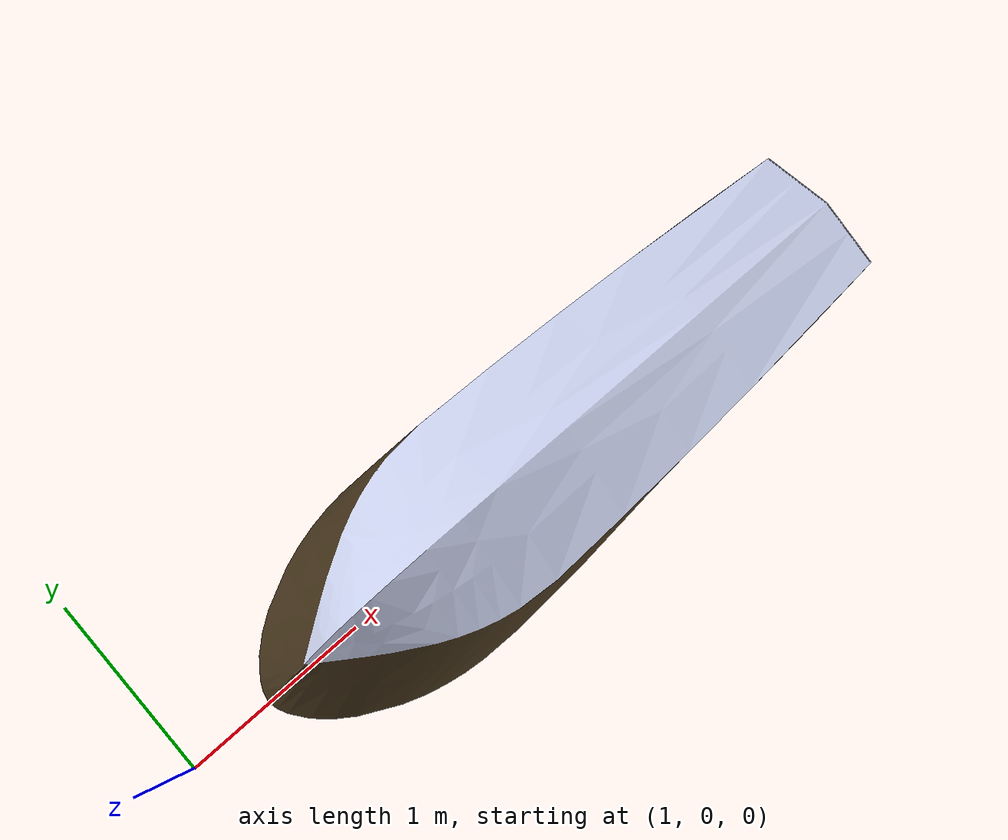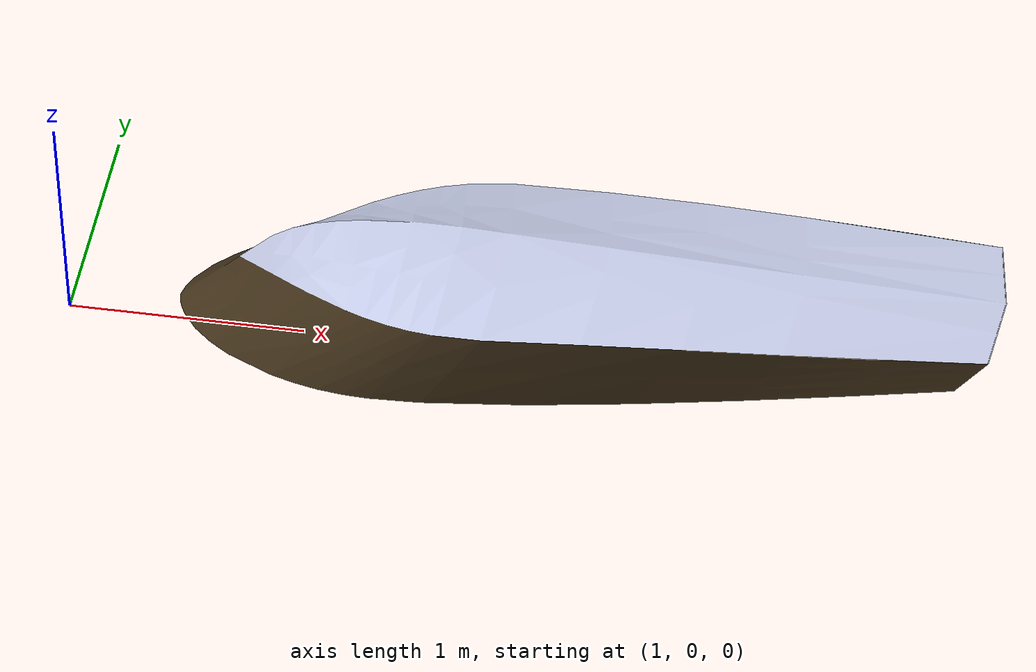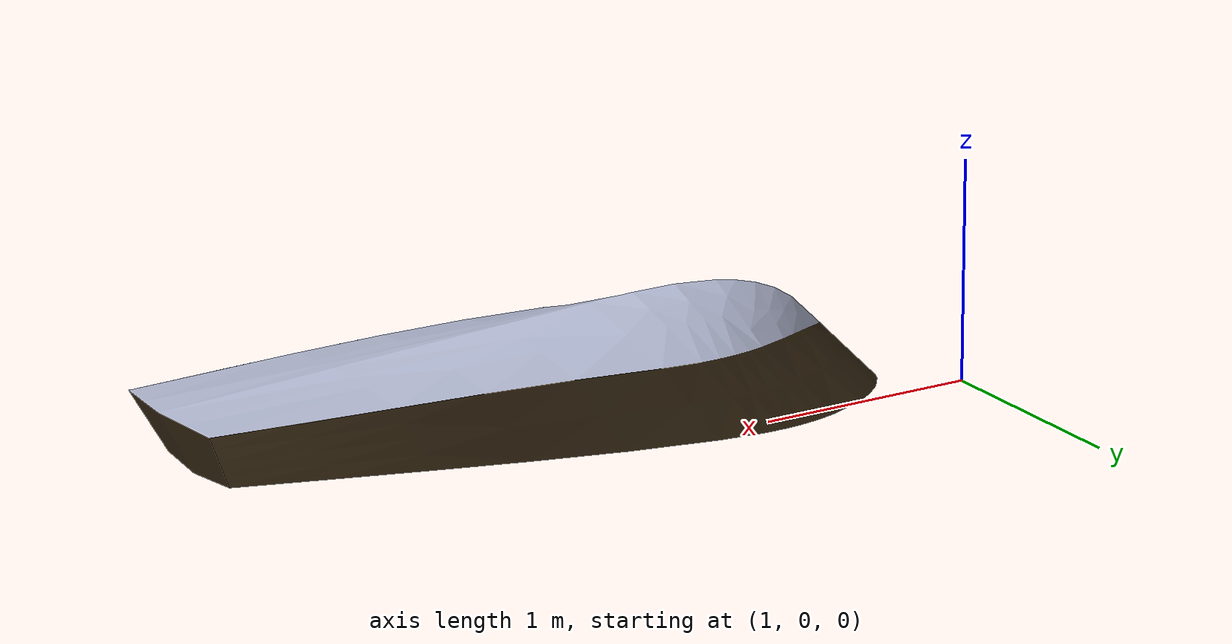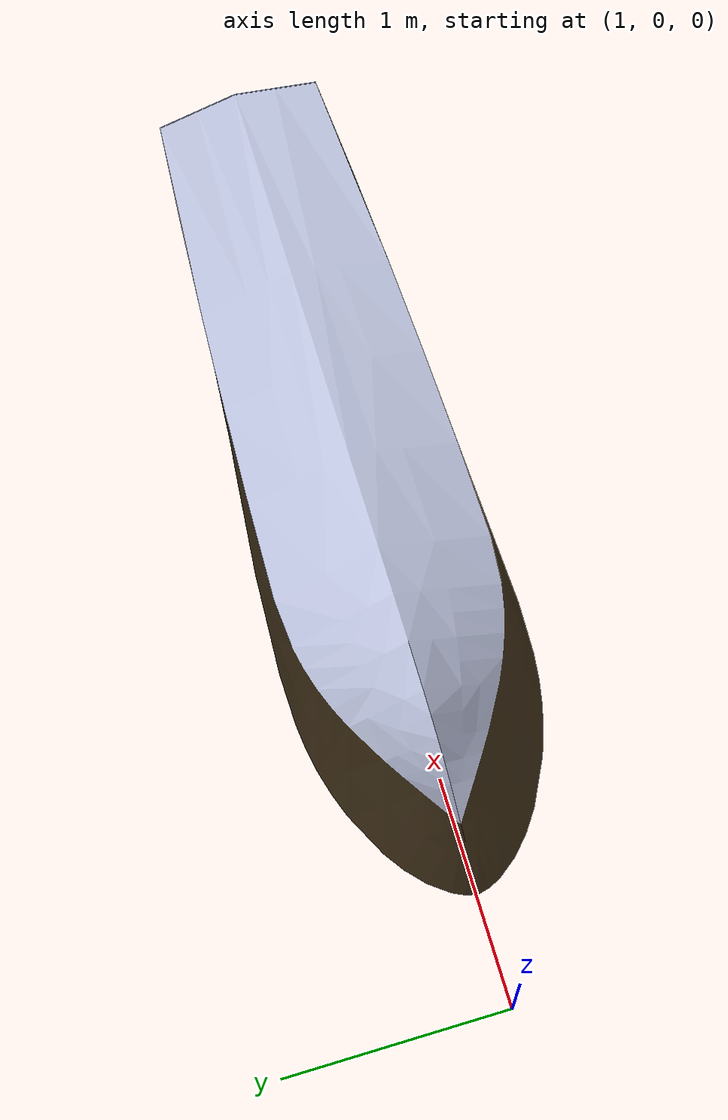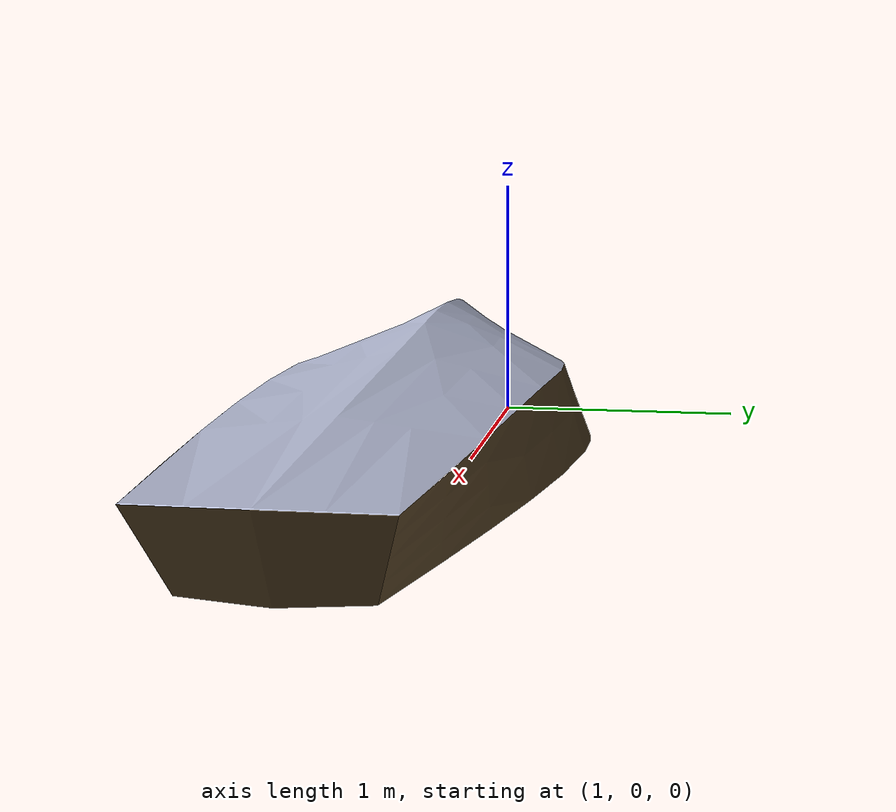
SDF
<?xml version="1.0" ?>

<sdf version="1.5">
  <model name="boat">
    <pose>0 0 0 0 0 0</pose>
    <static>true</static>
    <link name="link">
      <collision name="collision">
        <geometry>
          <mesh>
            <uri>model://boat/meshes/boat.dae</uri>
          </mesh>
        </geometry>
      </collision>
      <visual name="visual">
        <geometry>
          <mesh>
            <uri>model://boat/meshes/boat.dae</uri>
          </mesh>
        </geometry>
      </visual>
    </link>
  </model>
</sdf>
